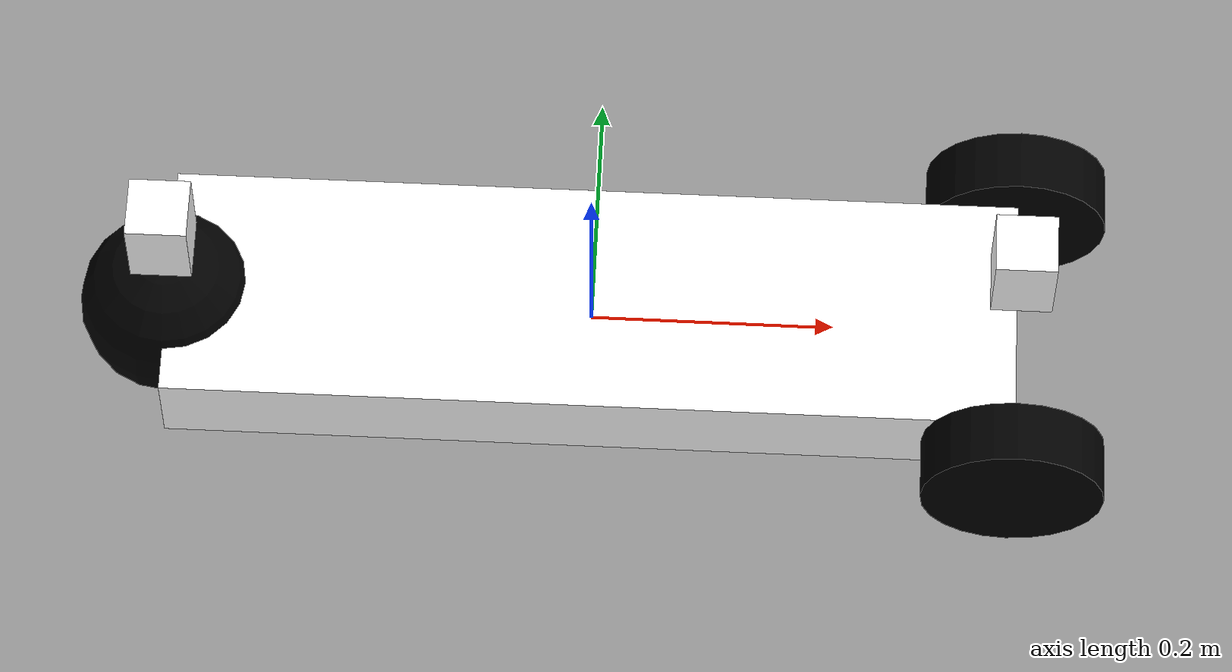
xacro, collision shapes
<?xml version="1.0"?>
<robot xmlns:xacro="http://www.ros.org/wiki/xacro" name="SimpleBot">

  <!-- Include the file that contains sonar description. -->
  <xacro:include filename="$(find hector_sensors_description)/urdf/sonar_sensor.urdf.xacro" />

  <!-- The definition of colors used in this urdf -->
  <material name="white">
    <color rgba="1 1 1 1"/>
  </material>
  <material name="black">
    <color rgba="0 0 0 1"/>
  </material>

  <!-- Property values used in this model -->
  <xacro:property name="M_PI" value="3.1415926535897931"/>

  <!--
  This is the main link of the robot. usually it is chosen to be the centre
  point of the robot.
  -->
  <link name="base_link">
    <!-- Inertia is used to simulate the physics of the robot in simulator -->
    <inertial>
      <mass value="1.0"/>
      <origin xyz="0 0 0" rpy="0 0 0"/>
      <inertia ixx="0.001" ixy="0" ixz="0" iyy="0.001" iyz="0" izz="0.001"/>
    </inertial>
    <collision>
      <origin xyz="0 0 0" rpy="0 0 0"/>
      <geometry>
        <box size="0.7 0.2 0.075"/>
      </geometry>
    </collision>
    <!--
    This is only used for visualization purposes. This can be a 3D CAD model of
    your robot.
  -->
    <visual>
      <origin xyz="0 0 0" rpy="0 0 0"/>
      <geometry>
        <box size="0.7 0.2 0.075"/>
      </geometry>
      <material name="white"/>
    </visual>
  </link>

  <xacro:macro name="wheel" params="side side_ind">
    <!--
    Each new robot part should have its own link. These links have the same
    fields as the base_link link.
    -->
    <link name="${side}_wheel">
      <inertial>
        <mass value="0.5"/>
        <origin xyz="0 0 0" rpy="0 0 0"/>
        <inertia ixx="0.001" ixy="0" ixz="0" iyy="0.001" iyz="0" izz="0.001"/>
      </inertial>
      <collision>
        <origin xyz="0 0 0" rpy="${M_PI/2} 0 0"/>
        <geometry>
          <cylinder radius="0.075" length="0.05"/>
        </geometry>
      </collision>
      <visual>
        <origin xyz="0 0 0" rpy="${M_PI/2} 0 0"/>
        <geometry>
          <cylinder radius="0.075" length="0.05"/>
        </geometry>
        <material name="black"/>
      </visual>
    </link>
    <joint name="${side}_wheel_joint" type="continuous">
      <parent link="base_link"/>
      <child link="${side}_wheel"/>
      <xacro:if value="${side_ind}">
        <origin xyz="0.35 0.125 0" rpy="0 0 0"/>
      </xacro:if>
      <xacro:if value="${not side_ind}">
        <origin xyz="0.35 -0.125 0" rpy="0 0 0"/>
      </xacro:if>
      <axis xyz="0 1 0"/>
    </joint>
    <!--
    Transmissions are used by ros_control. They are necessary so that we can
    simulate joints that are then controlled by ros_control controllers
    -->
    <transmission name="${side}_wheel_tran">
      <!--
      Type of transmission. These can be more sophisticated. Have a look at
      documentation to get more info on this.
      -->
      <type>transmission_interface/SimpleTransmission</type>
      <joint name="${side}_wheel_joint">
        <hardwareInterface>hardware_interface/VelocityJointInterface</hardwareInterface>
      </joint>
      <!--
      Actuator is the same as the actual motor that rotates the joint. The gear
      ration can be specified in mechanicalReduction parameter.
      -->
      <actuator name="${side}_wheel_motor">
        <mechanicalReduction>1</mechanicalReduction>
      </actuator>
    </transmission>
  </xacro:macro>
  <!--
  Here you actually declare the wheels. This is the initialization of the macro
  that we declared above. We also give different parameters for each wheel
  -->
  <xacro:wheel side="left" side_ind="1"/>
  <xacro:wheel side="right" side_ind="0"/>

  <!-- ros_control plugin for simulated robot -->
  <gazebo>
    <plugin name="gazebo_ros_control" filename="libgazebo_ros_control.so" />
  </gazebo>

  <!--Caster wheel of the robot  -->
  <link name="caster_link">
    <visual>
      <origin rpy="1.0 0 0" xyz="0 0 0"/>
      <geometry>
        <sphere radius="0.075"/>
      </geometry>
      <material name="black"/>
    </visual>
    <collision>
      <geometry>
        <sphere radius="0.075"/>
      </geometry>
      <origin rpy="0 0 0" xyz="0 0 0"/>
    </collision>
    <inertial>
      <mass value="0.5"/>
      <origin xyz="0 0 0"/>
      <inertia ixx="0.001" ixy="0.0" ixz="0.0" iyy="0.001" iyz="0.0" izz="0.001"/>
    </inertial>
  </link>
  <joint name="caster_joint" type="fixed">
    <parent link="base_link"/>
    <child link="caster_link"/>
    <origin rpy="0 0 0" xyz="-0.35 0 0"/>
  </joint>
  <gazebo reference="caster_link">
    <turnGravityOff>false</turnGravityOff>
    <mu1 value="0.0"/>
    <mu2 value="0.0"/>
  </gazebo>

  <!-- Sonar sensor facing forward -->
  <xacro:sonar_sensor
    name="front_sonar"
    parent="base_link"
    ros_topic="front_sonar"
    update_rate="10"
    min_range="0.01"
    max_range="5.00"
    field_of_view="${5*pi/180}"
    ray_count="3">
    <origin xyz="0.35 0 0.15" rpy="0 0 0"/>
  </xacro:sonar_sensor>

  <!-- Sonar sensor facing to the left -->
  <xacro:sonar_sensor
    name="left_sonar"
    parent="base_link"
    ros_topic="left_sonar"
    update_rate="10"
    min_range="0.01"
    max_range="5.00"
    field_of_view="${5*pi/180}"
    ray_count="3">
    <origin xyz="0.35 0 0.15" rpy="0 0 ${M_PI/2}"/>
  </xacro:sonar_sensor>

  <!-- Sonar sensor facing to the right -->
  <xacro:sonar_sensor
    name="righ_sonar"
    parent="base_link"
    ros_topic="right_sonar"
    update_rate="10"
    min_range="0.01"
    max_range="5.00"
    field_of_view="${5*pi/180}"
    ray_count="3">
    <origin xyz="0.35 0 0.15" rpy="0 0 -${M_PI/2}"/>
  </xacro:sonar_sensor>

  <!-- Macro defining hokuyo lidar units -->
  <xacro:macro name="hokuyo_lidar" params="side x y z yaw">
    <!-- Lidar link -->
    <link name="${side}_laser_link">
      <collision>
        <origin xyz="0 0 -0.0225" rpy="0 0 0"/>
        <geometry>
          <box size="0.05 0.05 0.07"/>
        </geometry>
      </collision>
      <visual>
        <origin xyz="0 0 -0.0225" rpy="0 0 0"/>
        <geometry>
          <box size="0.05 0.05 0.07"/>
        </geometry>
        <material name="white"/>
      </visual>
    </link>
    <!-- Joint connecting lidar to base_link -->
    <joint name="${side}_laser_joint" type="fixed">
      <parent link="base_link"/>
      <child link="${side}_laser_link"/>
      <origin xyz="${x} ${y} ${z}" rpy="0 0 ${yaw}"/>
    </joint>
    <!-- Gazebo tag describing how the lidar is simulated in Gazebo -->
    <gazebo reference="${side}_laser_link">
      <sensor name="${side}_laser" type="ray">
        <pose>0 0 0 0 0 0</pose>
        <ray>
          <scan>
            <horizontal>
              <!-- The URG-04LX-UG01  has  683 steps with 0.35139 Degree resolution -->
              <resolution>1</resolution>
              <max_angle>2.0944</max_angle>
              <!-- 120 Degree -->
              <min_angle>-2.0944</min_angle>
              <!-- -120 Degree -->
              <samples>683</samples>
            </horizontal>
          </scan>
          <range>
            <min>0.2</min>
            <max>20</max>
            <resolution>0.01</resolution>
          </range>
        </ray>

        <plugin name="${side}_laser" filename="libgazebo_ros_laser.so">
          <topicName>${side}_laser/${side}_scan</topicName>
          <frameName>${side}_laser_link</frameName>
        </plugin>

        <always_on>1</always_on>
        <update_rate>10</update_rate>
        <!-- You can change this property to true to visualize lidar rays in Gazebo -->
        <visualize>false</visualize>
      </sensor>
    </gazebo>
  </xacro:macro>

  <!-- Now we actually create two lidar instances that are added to our robot -->
  <xacro:hokuyo_lidar side="front" x="0.35" y="0" z="0.15" yaw="0"/>
  <xacro:hokuyo_lidar side="back" x="-0.35" y="0" z="0.15" yaw="${M_PI}"/>

  <!-- Here we create necessary links and joints of IMU device -->
  <link name="imu_link"/>
  <joint name="imu_joint" type="fixed">
    <parent link="base_link"/>
    <child link="imu_link"/>
    <origin xyz="0.0 0.0 0.0" rpy="0 0 0"/>
  </joint>
  <gazebo>
    <!-- Plugin that simulates IMU device in Gazebo -->
    <plugin name="imu_sim" filename="libhector_gazebo_ros_imu.so">
      <serviceName>/imu/calibrate</serviceName>
      <updateRate>200.0</updateRate>
      <bodyName>imu_link</bodyName>
      <frameId>imu_link</frameId>
      <topicName>imu_data</topicName>
      <rpyOffset>0 0 0</rpyOffset>
      <xyzOffset>0 0 0</xyzOffset>
      <gaussianNoise>0.00000001</gaussianNoise>
      <accelDrift>0.00000001 0.00000001 0.00000001</accelDrift>
      <accelDriftFrequency>0.00000001 0.00000001 0.00000001</accelDriftFrequency>
      <accelGaussianNoise>0.00000001 0.00000001 0.00000001</accelGaussianNoise>
      <rateDrift>0.0 0.0 0.0</rateDrift>
      <rateDriftFrequency>0.0 0.0 0.0</rateDriftFrequency>
      <rateGaussianNoise>0.0 0.0 0.0</rateGaussianNoise>
      <headingDrift>0.0 0.0 0.0</headingDrift>
      <headingDriftFrequency>0.0 0.0 0.0</headingDriftFrequency>
      <headingGaussianNoise>0.0 0.0 0.0</headingGaussianNoise>
    </plugin>
  </gazebo>

</robot>

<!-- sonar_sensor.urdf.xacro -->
<robot xmlns:xacro="http://www.ros.org/wiki/xacro">
  <xacro:macro name="sonar_sensor" params="name parent *origin ros_topic update_rate min_range max_range field_of_view ray_count">
    <joint name="${name}_joint" type="fixed">
      <xacro:insert_block name="origin" />
      <parent link="${parent}"/>
      <child link="${name}_link"/>
    </joint>

    <link name="${name}_link">
      <inertial>
        <mass value="0.001" />
        <origin xyz="0 0 0" rpy="0 0 0" />
        <inertia ixx="0.000000017" ixy="0" ixz="0" iyy="0.000000017" iyz="0" izz="0.000000017" />
      </inertial>
      <visual>
        <origin xyz="0 0 0" rpy="0 0 0" />
        <geometry>
          <mesh filename="package://hector_sensors_description/meshes/sonar_sensor/max_sonar_ez4.dae"/>
        </geometry>
      </visual>
      <collision>
        <origin xyz="0 0 0" rpy="0 0 0" />
        <geometry>
          <box size="0.01 0.01 0.01" />
        </geometry>
      </collision>
    </link>

    <gazebo reference="${name}_link">
      <sensor type="ray" name="${name}">
        <always_on>true</always_on>
        <update_rate>${update_rate}</update_rate>
        <pose>0 0 0 0 0 0</pose>
        <visualize>false</visualize>
        <ray>
          <scan>
            <horizontal>
              <samples>${ray_count}</samples>
              <resolution>1</resolution>
              <min_angle>-${field_of_view/2}</min_angle>
              <max_angle> ${field_of_view/2}</max_angle>
            </horizontal>
            <vertical>
              <samples>${ray_count}</samples>
              <resolution>1</resolution>
              <min_angle>-${field_of_view/2}</min_angle>
              <max_angle> ${field_of_view/2}</max_angle>
            </vertical>
          </scan>
          <range>
            <min>${min_range}</min>
            <max>${max_range}</max>
            <resolution>0.01</resolution>
          </range>
        </ray>

        <plugin name="gazebo_ros_${name}_controller" filename="libhector_gazebo_ros_sonar.so">
          <gaussianNoise>0.005</gaussianNoise>
          <topicName>${ros_topic}</topicName>
          <frameId>${name}_link</frameId>
        </plugin>
      </sensor>
    </gazebo>
  </xacro:macro>
</robot>
